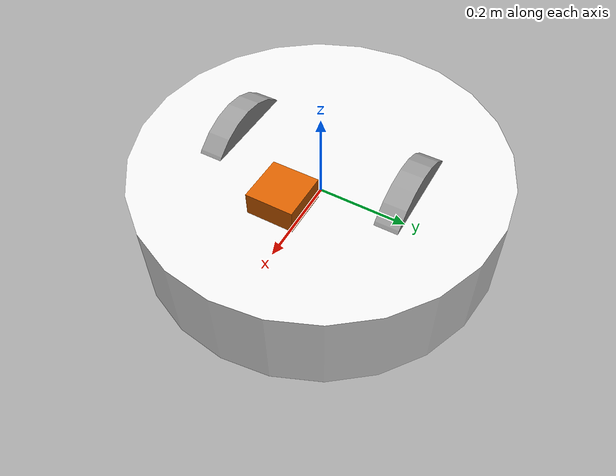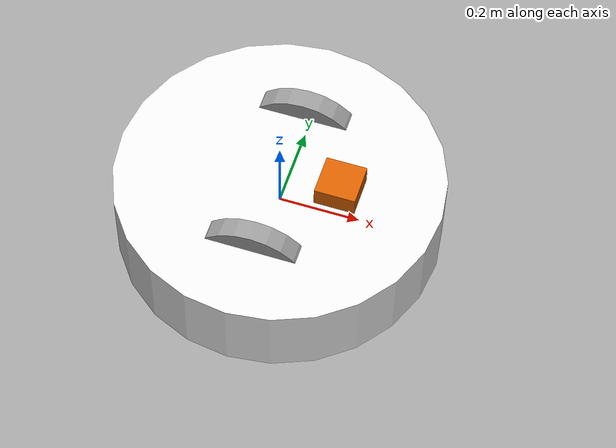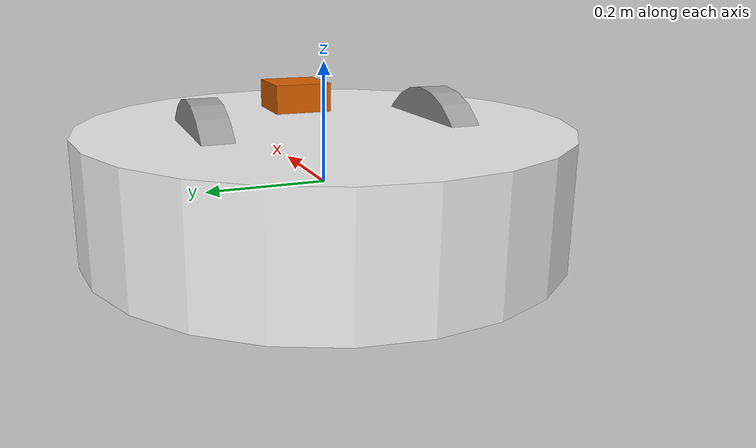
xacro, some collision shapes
<?xml version='1.0'?>

<robot name="my_robot" xmlns:xacro="http://www.ros.org/wiki/xacro">

  <gazebo reference="left_wheel">
      <material>Gazebo/Grey</material>
  </gazebo>

  <gazebo reference="right_wheel">
      <material>Gazebo/Grey</material>
  </gazebo>

  <gazebo reference="camera">
      <material>Gazebo/Blue</material>
  </gazebo>

  <gazebo reference="chassis">
      <material>Gazebo/White</material>
  </gazebo>

  <xacro:include filename="$(find my_robot)/urdf/my_robot.gazebo"/>
  <link name="robot_footprint"></link>

  <joint name="robot_footprint_joint" type="fixed">
    <origin xyz="0 0 0" rpy="0 0 0" />
    <parent link="robot_footprint"/>
    <child link="chassis" />
  </joint>

  <link name='chassis'>
    <pose>0 0 0.2 0 0 0</pose>

    <inertial>
      <mass value="15.0"/>
      <origin xyz="0.0 0 0" rpy=" 0 0 0"/>
      <inertia
          ixx="0.1" ixy="0" ixz="0"
          iyy="0.1" iyz="0"
          izz="0.1"
      />
    </inertial>

    <collision name='chassis_collision'>
      <origin xyz="0 0 0" rpy=" 0 0 0"/>
      <geometry>
        <cylinder radius=".25" length="0.2"/>
      </geometry>
    </collision>

    <visual name='chassis_visual'>
      <origin xyz="0 0 0" rpy=" 0 0 0"/>
      <geometry>
        <cylinder radius=".4" length="0.2"/>
      </geometry>
    </visual>

    <collision name='back_caster_collision'>
      <origin xyz="-0.15 0 -0.05" rpy=" 0 0 0"/>
      <geometry>
        <sphere radius="0.1"/>
      </geometry>
    </collision>

    <visual name='back_caster_visual'>
      <origin xyz="-0.15 0 -0.05" rpy=" 0 0 0"/>
      <geometry>
        <sphere radius="0.1"/>
      </geometry>
    </visual>

    <collision name='front_caster_collision'>
      <origin xyz="0.15 0 -0.05" rpy=" 0 0 0"/>
      <geometry>
        <sphere radius="0.1"/>
      </geometry>
    </collision>

    <visual name='front_caster_visual'>
      <origin xyz="0.15 0 -0.05" rpy=" 0 0 0"/>
      <geometry>
        <sphere radius="0.1"/>
      </geometry>
    </visual>
  </link>

    <link name='left_wheel'>
      <collision name='left_wheel_collision'>
        <origin xyz="0 0 0" rpy=" 0 1.5707 1.5707"/>
        <geometry>
          <cylinder radius="0.15" length="0.05"/>
        </geometry>
      </collision>
      <visual name='left_wheel_visual'>
        <origin xyz="0 0 0" rpy=" 0 1.5707 1.5707"/>
        <geometry>
          <cylinder radius="0.15" length="0.05"/>
        </geometry>
      </visual>
      <inertial>
        <mass value="5.0"/>
        <origin xyz="0.0 0 0" rpy=" 0 0 0"/>
        <inertia
            ixx="0.1" ixy="0" ixz="0"
            iyy="0.1" iyz="0"
            izz="0.1"
        />
      </inertial>
    </link>

    <joint type="continuous" name="left_wheel_hinge">
      <origin xyz="0 0.2 0" rpy="0 0 0"/>
      <child link="left_wheel"/>
      <parent link="chassis"/>
      <axis xyz="0 1 0" rpy="0 0 0"/>
      <limit effort="10000" velocity="1000"/>
      <dynamics damping="1.0" friction="1.0"/>
    </joint>

    <link name='right_wheel'>
      <collision name='right_wheel_collision'>
        <origin xyz="0 0 0" rpy=" 0 1.5707 1.5707"/>
        <geometry>
          <cylinder radius="0.15" length="0.05"/>
        </geometry>
      </collision>
      <visual name='right_wheel_visual'>
        <origin xyz="0 0 0" rpy=" 0 1.5707 1.5707"/>
        <geometry>
          <cylinder radius="0.15" length="0.05"/>
        </geometry>
      </visual>
      <inertial>
        <mass value="5.0"/>
        <origin xyz="0.0 0 0" rpy=" 0 0 0"/>
        <inertia
            ixx="0.1" ixy="0" ixz="0"
            iyy="0.1" iyz="0"
            izz="0.1"
        />
      </inertial>
    </link>

    <joint type="continuous" name="right_wheel_hinge">
      <origin xyz="0 -0.2 0" rpy="0 0 0"/>
      <child link="right_wheel"/>
      <parent link="chassis"/>
      <axis xyz="0 1 0" rpy="0 0 0"/>
      <limit effort="10000" velocity="1000"/>
      <dynamics damping="1.0" friction="1.0"/>
    </joint>

    <link name="camera">
      <visual name='camera_visual'>
        <origin xyz="0 0 0" rpy="0 0 0"/>
        <geometry>
          <box size="0.05 0.05 0.05"/>
        </geometry>
      </visual>
      <collision name='camera_collision'>
        <origin xyz="0 0 0" rpy="0 0 0"/>
        <geometry>
          <box size="0.05 0.05 0.05"/>
        </geometry>
      </collision>
      <inertial>
        <mass value="0.1"/>
        <origin xyz="0.05 0.05 0.05" rpy=" 0 0 0"/>
        <inertia
            ixx="1e-6" ixy="0" ixz="0"
            iyy="1e-6" iyz="0"
            izz="1e-6"
        />
      </inertial>
    </link>

    <joint type="fixed" name="camera_joint">
      <origin xyz="0.275 0 0" rpy="0 0 0"/>
      <child link="camera"/>
      <parent link="chassis"/>
      <axis xyz="0 1 0" rpy="0 0 0"/>
    </joint>

    <link name="hokuyo">
      <visual name='hokuyo_visual'>
        <origin xyz="0 0 0" rpy="0 0 0"/>
        <geometry>
          <mesh filename="package://my_robot/meshes/hokuyo.dae"/>
        </geometry>
      </visual>
      <collision name='hokuyo_collision'>
        <origin xyz="0 0 0" rpy="0 0 0"/>
        <geometry>
          <box size="0.1 0.1 0.1"/>
        </geometry>
      </collision>
      <inertial>
        <mass value="1e-5"/>
        <origin xyz="0.05 0.05 0.05" rpy=" 0 0 0"/>
        <inertia
            ixx="1e-6" ixy="0" ixz="0"
            iyy="1e-6" iyz="0"
            izz="1e-6"
        />
      </inertial>
    </link>

    <joint type="fixed" name="hokuyo_joint">
      <origin xyz="0.15 0 0.1" rpy="0 0 0"/>
      <child link="hokuyo"/>
      <parent link="chassis"/>
      <axis xyz="0 1 0" rpy="0 0 0"/>
    </joint>

</robot>
